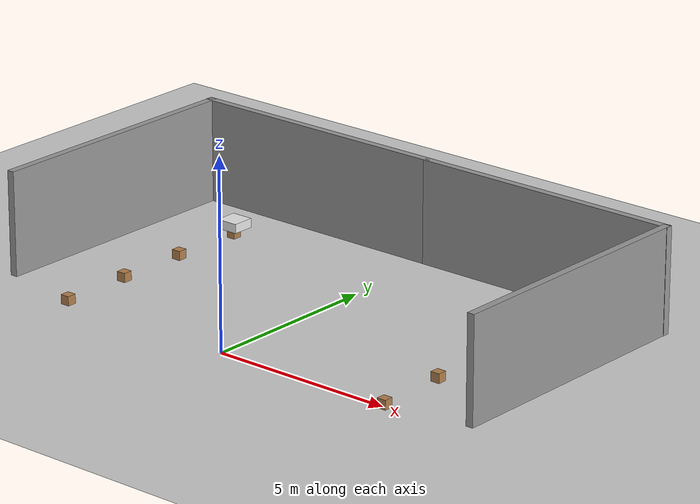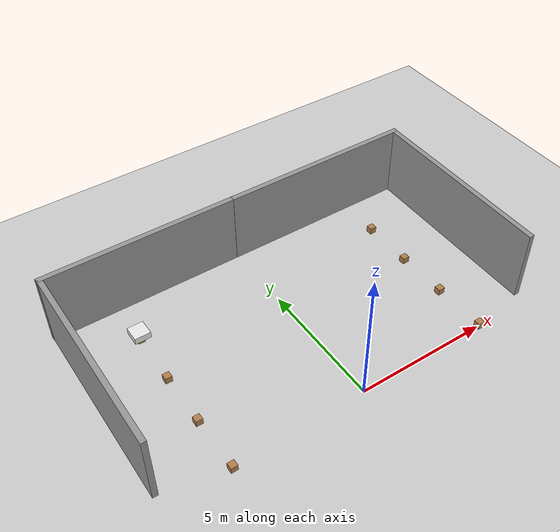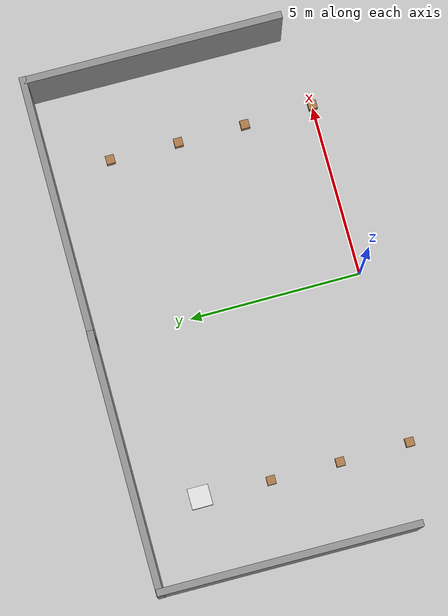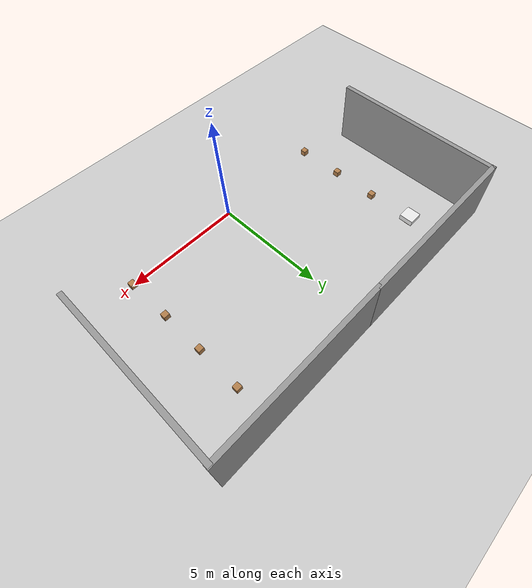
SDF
<sdf version="1.7">
 <world name="default">
  <model name="ground_plane">
   <static>1</static>
   <link name="link">
    <collision name="collision">
     <geometry><plane><normal>0 0 1</normal><size>100 100</size></plane></geometry>
     <surface>
      <contact><collide_bitmask>65535</collide_bitmask></contact>
      <friction><ode><mu>100</mu><mu2>50</mu2></ode></friction>
     </surface>
    </collision>
    <visual name="visual">
     <cast_shadows>0</cast_shadows>
     <geometry><plane><normal>0 0 1</normal><size>100 100</size></plane></geometry>
     <material>
      <script><uri>file://media/materials/scripts/gazebo.material</uri><name>Gazebo/Grey</name></script>
     </material>
    </visual>
   </link>
  </model>
  <model name="grey_wall_clone_clone">
   <static>1</static>
   <link name="link">
    <pose>0 0 1.4 0 -0 0</pose>
    <collision name="collision"><geometry><box><size>7.5 0.2 2.8</size></box></geometry></collision>
    <visual name="visual">
     <cast_shadows>0</cast_shadows>
     <geometry><box><size>7.5 0.2 2.8</size></box></geometry>
     <material>
      <script>
       <uri>model://grey_wall/materials/scripts</uri>
       <uri>model://grey_wall/materials/textures</uri>
       <name>vrc/grey_wall</name>
      </script>
     </material>
    </visual>
   </link>
   <pose>-7.34226 4.14259 0 0 -0 1.56255</pose>
  </model>
  <model name="grey_wall_clone_0">
   <static>1</static>
   <link name="link">
    <pose>0 0 1.4 0 -0 0</pose>
    <collision name="collision"><geometry><box><size>7.5 0.2 2.8</size></box></geometry></collision>
    <visual name="visual">
     <cast_shadows>0</cast_shadows>
     <geometry><box><size>7.5 0.2 2.8</size></box></geometry>
     <material>
      <script>
       <uri>model://grey_wall/materials/scripts</uri>
       <uri>model://grey_wall/materials/textures</uri>
       <name>vrc/grey_wall</name>
      </script>
     </material>
    </visual>
   </link>
   <pose>-3.67169 7.8055 0 0 -0 0</pose>
  </model>
  <model name="grey_wall_clone_2">
   <static>1</static>
   <link name="link">
    <pose>0 0 1.4 0 -0 0</pose>
    <collision name="collision"><geometry><box><size>7.5 0.2 2.8</size></box></geometry></collision>
    <visual name="visual">
     <cast_shadows>0</cast_shadows>
     <geometry><box><size>7.5 0.2 2.8</size></box></geometry>
     <material>
      <script>
       <uri>model://grey_wall/materials/scripts</uri>
       <uri>model://grey_wall/materials/textures</uri>
       <name>vrc/grey_wall</name>
      </script>
     </material>
    </visual>
   </link>
   <pose>3.67865 7.80091 0 0 -0 0</pose>
  </model>
  <model name="grey_wall_clone_clone_clone">
   <static>1</static>
   <link name="link">
    <pose>0 0 1.4 0 -0 0</pose>
    <collision name="collision"><geometry><box><size>7.5 0.2 2.8</size></box></geometry></collision>
    <visual name="visual">
     <cast_shadows>0</cast_shadows>
     <geometry><box><size>7.5 0.2 2.8</size></box></geometry>
     <material>
      <script>
       <uri>model://grey_wall/materials/scripts</uri>
       <uri>model://grey_wall/materials/textures</uri>
       <name>vrc/grey_wall</name>
      </script>
     </material>
    </visual>
   </link>
   <pose>7.28836 4.11789 0 0 -0 1.56255</pose>
  </model>
  <model name="stand">
   <link name="link_0">
    <inertial>
     <mass>1</mass>
     <inertia>
      <ixx>0.166667</ixx>
      <ixy>0</ixy>
      <ixz>0</ixz>
      <iyy>0.166667</iyy>
      <iyz>0</iyz>
      <izz>0.166667</izz>
     </inertia>
    </inertial>
    <visual name="visual">
     <geometry><box><size>0.25 0.25 0.25</size></box></geometry>
     <material>
      <lighting>1</lighting>
      <script><uri>file://media/materials/scripts/gazebo.material</uri><name>Gazebo/Wood</name></script>
      <shader type="pixel"><normal_map>__default__</normal_map></shader>
      <ambient>0.3 0.3 0.3 1</ambient>
      <diffuse>0.7 0.7 0.7 1</diffuse>
      <specular>0.01 0.01 0.01 1</specular>
      <emissive>0 0 0 1</emissive>
     </material>
    </visual>
    <collision name="collision">
     <geometry><box><size>0.25 0.25 0.25</size></box></geometry>
     <surface>
      <friction>
       <ode><mu>1</mu><mu2>1</mu2><fdir1>0 0 0</fdir1><slip1>0</slip1><slip2>0</slip2></ode>
       <torsional>
        <coefficient>1</coefficient>
        <patch_radius>0</patch_radius>
        <surface_radius>0</surface_radius>
        <use_patch_radius>1</use_patch_radius>
        <ode><slip>0</slip></ode>
       </torsional>
      </friction>
      <bounce><restitution_coefficient>0</restitution_coefficient><threshold>1e+06</threshold></bounce>
      <contact>
       <collide_without_contact>0</collide_without_contact>
       <collide_without_contact_bitmask>1</collide_without_contact_bitmask>
       <collide_bitmask>1</collide_bitmask>
       <ode>
        <soft_cfm>0</soft_cfm>
        <soft_erp>0.2</soft_erp>
        <kp>1e+13</kp>
        <kd>1</kd>
        <max_vel>0.01</max_vel>
        <min_depth>0</min_depth>
       </ode>
       <bullet>
        <split_impulse>1</split_impulse>
        <split_impulse_penetration_threshold>-0.01</split_impulse_penetration_threshold>
        <soft_cfm>0</soft_cfm>
        <soft_erp>0.2</soft_erp>
        <kp>1e+13</kp>
        <kd>1</kd>
       </bullet>
      </contact>
     </surface>
    </collision>
   </link>
   <static>0</static>
   <pose>-5.01719 -0.072488 0.125 0 -0 0</pose>
  </model>
  <model name="stand_clone_2">
   <link name="link_0">
    <inertial>
     <mass>1</mass>
     <inertia>
      <ixx>0.166667</ixx>
      <ixy>0</ixy>
      <ixz>0</ixz>
      <iyy>0.166667</iyy>
      <iyz>0</iyz>
      <izz>0.166667</izz>
     </inertia>
    </inertial>
    <visual name="visual">
     <geometry><box><size>0.25 0.25 0.25</size></box></geometry>
     <material>
      <lighting>1</lighting>
      <script><uri>file://media/materials/scripts/gazebo.material</uri><name>Gazebo/Wood</name></script>
      <shader type="pixel"><normal_map>__default__</normal_map></shader>
      <ambient>0.3 0.3 0.3 1</ambient>
      <diffuse>0.7 0.7 0.7 1</diffuse>
      <specular>0.01 0.01 0.01 1</specular>
      <emissive>0 0 0 1</emissive>
     </material>
    </visual>
    <collision name="collision">
     <geometry><box><size>0.25 0.25 0.25</size></box></geometry>
     <surface>
      <friction>
       <ode><mu>1</mu><mu2>1</mu2><fdir1>0 0 0</fdir1><slip1>0</slip1><slip2>0</slip2></ode>
       <torsional>
        <coefficient>1</coefficient>
        <patch_radius>0</patch_radius>
        <surface_radius>0</surface_radius>
        <use_patch_radius>1</use_patch_radius>
        <ode><slip>0</slip></ode>
       </torsional>
      </friction>
      <bounce><restitution_coefficient>0</restitution_coefficient><threshold>1e+06</threshold></bounce>
      <contact>
       <collide_without_contact>0</collide_without_contact>
       <collide_without_contact_bitmask>1</collide_without_contact_bitmask>
       <collide_bitmask>1</collide_bitmask>
       <ode>
        <soft_cfm>0</soft_cfm>
        <soft_erp>0.2</soft_erp>
        <kp>1e+13</kp>
        <kd>1</kd>
        <max_vel>0.01</max_vel>
        <min_depth>0</min_depth>
       </ode>
       <bullet>
        <split_impulse>1</split_impulse>
        <split_impulse_penetration_threshold>-0.01</split_impulse_penetration_threshold>
        <soft_cfm>0</soft_cfm>
        <soft_erp>0.2</soft_erp>
        <kp>1e+13</kp>
        <kd>1</kd>
       </bullet>
      </contact>
     </surface>
    </collision>
   </link>
   <static>0</static>
   <pose>-5.04215 1.97133 0.125 0 -0 0</pose>
  </model>
  <model name="stand_clone_3">
   <link name="link_0">
    <inertial>
     <mass>1</mass>
     <inertia>
      <ixx>0.166667</ixx>
      <ixy>0</ixy>
      <ixz>0</ixz>
      <iyy>0.166667</iyy>
      <iyz>0</iyz>
      <izz>0.166667</izz>
     </inertia>
    </inertial>
    <visual name="visual">
     <geometry><box><size>0.25 0.25 0.25</size></box></geometry>
     <material>
      <lighting>1</lighting>
      <script><uri>file://media/materials/scripts/gazebo.material</uri><name>Gazebo/Wood</name></script>
      <shader type="pixel"><normal_map>__default__</normal_map></shader>
      <ambient>0.3 0.3 0.3 1</ambient>
      <diffuse>0.7 0.7 0.7 1</diffuse>
      <specular>0.01 0.01 0.01 1</specular>
      <emissive>0 0 0 1</emissive>
     </material>
    </visual>
    <collision name="collision">
     <geometry><box><size>0.25 0.25 0.25</size></box></geometry>
     <surface>
      <friction>
       <ode><mu>1</mu><mu2>1</mu2><fdir1>0 0 0</fdir1><slip1>0</slip1><slip2>0</slip2></ode>
       <torsional>
        <coefficient>1</coefficient>
        <patch_radius>0</patch_radius>
        <surface_radius>0</surface_radius>
        <use_patch_radius>1</use_patch_radius>
        <ode><slip>0</slip></ode>
       </torsional>
      </friction>
      <bounce><restitution_coefficient>0</restitution_coefficient><threshold>1e+06</threshold></bounce>
      <contact>
       <collide_without_contact>0</collide_without_contact>
       <collide_without_contact_bitmask>1</collide_without_contact_bitmask>
       <collide_bitmask>1</collide_bitmask>
       <ode>
        <soft_cfm>0</soft_cfm>
        <soft_erp>0.2</soft_erp>
        <kp>1e+13</kp>
        <kd>1</kd>
        <max_vel>0.01</max_vel>
        <min_depth>0</min_depth>
       </ode>
       <bullet>
        <split_impulse>1</split_impulse>
        <split_impulse_penetration_threshold>-0.01</split_impulse_penetration_threshold>
        <soft_cfm>0</soft_cfm>
        <soft_erp>0.2</soft_erp>
        <kp>1e+13</kp>
        <kd>1</kd>
       </bullet>
      </contact>
     </surface>
    </collision>
   </link>
   <static>0</static>
   <pose>-5.03047 3.99214 0.125 0 -0 0</pose>
  </model>
  <model name="stand_clone_4">
   <link name="link_0">
    <inertial>
     <mass>1</mass>
     <inertia>
      <ixx>0.166667</ixx>
      <ixy>0</ixy>
      <ixz>0</ixz>
      <iyy>0.166667</iyy>
      <iyz>0</iyz>
      <izz>0.166667</izz>
     </inertia>
    </inertial>
    <visual name="visual">
     <geometry><box><size>0.25 0.25 0.25</size></box></geometry>
     <material>
      <lighting>1</lighting>
      <script><uri>file://media/materials/scripts/gazebo.material</uri><name>Gazebo/Wood</name></script>
      <shader type="pixel"><normal_map>__default__</normal_map></shader>
      <ambient>0.3 0.3 0.3 1</ambient>
      <diffuse>0.7 0.7 0.7 1</diffuse>
      <specular>0.01 0.01 0.01 1</specular>
      <emissive>0 0 0 1</emissive>
     </material>
    </visual>
    <collision name="collision">
     <geometry><box><size>0.25 0.25 0.25</size></box></geometry>
     <surface>
      <friction>
       <ode><mu>1</mu><mu2>1</mu2><fdir1>0 0 0</fdir1><slip1>0</slip1><slip2>0</slip2></ode>
       <torsional>
        <coefficient>1</coefficient>
        <patch_radius>0</patch_radius>
        <surface_radius>0</surface_radius>
        <use_patch_radius>1</use_patch_radius>
        <ode><slip>0</slip></ode>
       </torsional>
      </friction>
      <bounce><restitution_coefficient>0</restitution_coefficient><threshold>1e+06</threshold></bounce>
      <contact>
       <collide_without_contact>0</collide_without_contact>
       <collide_without_contact_bitmask>1</collide_without_contact_bitmask>
       <collide_bitmask>1</collide_bitmask>
       <ode>
        <soft_cfm>0</soft_cfm>
        <soft_erp>0.2</soft_erp>
        <kp>1e+13</kp>
        <kd>1</kd>
        <max_vel>0.01</max_vel>
        <min_depth>0</min_depth>
       </ode>
       <bullet>
        <split_impulse>1</split_impulse>
        <split_impulse_penetration_threshold>-0.01</split_impulse_penetration_threshold>
        <soft_cfm>0</soft_cfm>
        <soft_erp>0.2</soft_erp>
        <kp>1e+13</kp>
        <kd>1</kd>
       </bullet>
      </contact>
     </surface>
    </collision>
   </link>
   <static>0</static>
   <pose>-4.98638 6.03055 0.12498 -4e-06 -1e-06 -0.001712</pose>
  </model>
  <model name="stand_clone_5">
   <link name="link_0">
    <inertial>
     <mass>1</mass>
     <inertia>
      <ixx>0.166667</ixx>
      <ixy>0</ixy>
      <ixz>0</ixz>
      <iyy>0.166667</iyy>
      <iyz>0</iyz>
      <izz>0.166667</izz>
     </inertia>
    </inertial>
    <visual name="visual">
     <geometry><box><size>0.25 0.25 0.25</size></box></geometry>
     <material>
      <lighting>1</lighting>
      <script><uri>file://media/materials/scripts/gazebo.material</uri><name>Gazebo/Wood</name></script>
      <shader type="pixel"><normal_map>__default__</normal_map></shader>
      <ambient>0.3 0.3 0.3 1</ambient>
      <diffuse>0.7 0.7 0.7 1</diffuse>
      <specular>0.01 0.01 0.01 1</specular>
      <emissive>0 0 0 1</emissive>
     </material>
    </visual>
    <collision name="collision">
     <geometry><box><size>0.25 0.25 0.25</size></box></geometry>
     <surface>
      <friction>
       <ode><mu>1</mu><mu2>1</mu2><fdir1>0 0 0</fdir1><slip1>0</slip1><slip2>0</slip2></ode>
       <torsional>
        <coefficient>1</coefficient>
        <patch_radius>0</patch_radius>
        <surface_radius>0</surface_radius>
        <use_patch_radius>1</use_patch_radius>
        <ode><slip>0</slip></ode>
       </torsional>
      </friction>
      <bounce><restitution_coefficient>0</restitution_coefficient><threshold>1e+06</threshold></bounce>
      <contact>
       <collide_without_contact>0</collide_without_contact>
       <collide_without_contact_bitmask>1</collide_without_contact_bitmask>
       <collide_bitmask>1</collide_bitmask>
       <ode>
        <soft_cfm>0</soft_cfm>
        <soft_erp>0.2</soft_erp>
        <kp>1e+13</kp>
        <kd>1</kd>
        <max_vel>0.01</max_vel>
        <min_depth>0</min_depth>
       </ode>
       <bullet>
        <split_impulse>1</split_impulse>
        <split_impulse_penetration_threshold>-0.01</split_impulse_penetration_threshold>
        <soft_cfm>0</soft_cfm>
        <soft_erp>0.2</soft_erp>
        <kp>1e+13</kp>
        <kd>1</kd>
       </bullet>
      </contact>
     </surface>
    </collision>
   </link>
   <static>0</static>
   <pose>5.05805 -0.000635 0.125 0 -0 0</pose>
  </model>
  <model name="stand_clone_6">
   <link name="link_0">
    <inertial>
     <mass>1</mass>
     <inertia>
      <ixx>0.166667</ixx>
      <ixy>0</ixy>
      <ixz>0</ixz>
      <iyy>0.166667</iyy>
      <iyz>0</iyz>
      <izz>0.166667</izz>
     </inertia>
    </inertial>
    <visual name="visual">
     <geometry><box><size>0.25 0.25 0.25</size></box></geometry>
     <material>
      <lighting>1</lighting>
      <script><uri>file://media/materials/scripts/gazebo.material</uri><name>Gazebo/Wood</name></script>
      <shader type="pixel"><normal_map>__default__</normal_map></shader>
      <ambient>0.3 0.3 0.3 1</ambient>
      <diffuse>0.7 0.7 0.7 1</diffuse>
      <specular>0.01 0.01 0.01 1</specular>
      <emissive>0 0 0 1</emissive>
     </material>
    </visual>
    <collision name="collision">
     <geometry><box><size>0.25 0.25 0.25</size></box></geometry>
     <surface>
      <friction>
       <ode><mu>1</mu><mu2>1</mu2><fdir1>0 0 0</fdir1><slip1>0</slip1><slip2>0</slip2></ode>
       <torsional>
        <coefficient>1</coefficient>
        <patch_radius>0</patch_radius>
        <surface_radius>0</surface_radius>
        <use_patch_radius>1</use_patch_radius>
        <ode><slip>0</slip></ode>
       </torsional>
      </friction>
      <bounce><restitution_coefficient>0</restitution_coefficient><threshold>1e+06</threshold></bounce>
      <contact>
       <collide_without_contact>0</collide_without_contact>
       <collide_without_contact_bitmask>1</collide_without_contact_bitmask>
       <collide_bitmask>1</collide_bitmask>
       <ode>
        <soft_cfm>0</soft_cfm>
        <soft_erp>0.2</soft_erp>
        <kp>1e+13</kp>
        <kd>1</kd>
        <max_vel>0.01</max_vel>
        <min_depth>0</min_depth>
       </ode>
       <bullet>
        <split_impulse>1</split_impulse>
        <split_impulse_penetration_threshold>-0.01</split_impulse_penetration_threshold>
        <soft_cfm>0</soft_cfm>
        <soft_erp>0.2</soft_erp>
        <kp>1e+13</kp>
        <kd>1</kd>
       </bullet>
      </contact>
     </surface>
    </collision>
   </link>
   <static>0</static>
   <pose>5.01599 2.02341 0.125 0 -0 0</pose>
  </model>
  <model name="stand_clone_7">
   <link name="link_0">
    <inertial>
     <mass>1</mass>
     <inertia>
      <ixx>0.166667</ixx>
      <ixy>0</ixy>
      <ixz>0</ixz>
      <iyy>0.166667</iyy>
      <iyz>0</iyz>
      <izz>0.166667</izz>
     </inertia>
    </inertial>
    <visual name="visual">
     <geometry><box><size>0.25 0.25 0.25</size></box></geometry>
     <material>
      <lighting>1</lighting>
      <script><uri>file://media/materials/scripts/gazebo.material</uri><name>Gazebo/Wood</name></script>
      <shader type="pixel"><normal_map>__default__</normal_map></shader>
      <ambient>0.3 0.3 0.3 1</ambient>
      <diffuse>0.7 0.7 0.7 1</diffuse>
      <specular>0.01 0.01 0.01 1</specular>
      <emissive>0 0 0 1</emissive>
     </material>
    </visual>
    <collision name="collision">
     <geometry><box><size>0.25 0.25 0.25</size></box></geometry>
     <surface>
      <friction>
       <ode><mu>1</mu><mu2>1</mu2><fdir1>0 0 0</fdir1><slip1>0</slip1><slip2>0</slip2></ode>
       <torsional>
        <coefficient>1</coefficient>
        <patch_radius>0</patch_radius>
        <surface_radius>0</surface_radius>
        <use_patch_radius>1</use_patch_radius>
        <ode><slip>0</slip></ode>
       </torsional>
      </friction>
      <bounce><restitution_coefficient>0</restitution_coefficient><threshold>1e+06</threshold></bounce>
      <contact>
       <collide_without_contact>0</collide_without_contact>
       <collide_without_contact_bitmask>1</collide_without_contact_bitmask>
       <collide_bitmask>1</collide_bitmask>
       <ode>
        <soft_cfm>0</soft_cfm>
        <soft_erp>0.2</soft_erp>
        <kp>1e+13</kp>
        <kd>1</kd>
        <max_vel>0.01</max_vel>
        <min_depth>0</min_depth>
       </ode>
       <bullet>
        <split_impulse>1</split_impulse>
        <split_impulse_penetration_threshold>-0.01</split_impulse_penetration_threshold>
        <soft_cfm>0</soft_cfm>
        <soft_erp>0.2</soft_erp>
        <kp>1e+13</kp>
        <kd>1</kd>
       </bullet>
      </contact>
     </surface>
    </collision>
   </link>
   <static>0</static>
   <pose>5.00998 3.99876 0.125 0 -0 0</pose>
  </model>
  <model name="stand_clone_8">
   <link name="link_0">
    <inertial>
     <mass>1</mass>
     <inertia>
      <ixx>0.166667</ixx>
      <ixy>0</ixy>
      <ixz>0</ixz>
      <iyy>0.166667</iyy>
      <iyz>0</iyz>
      <izz>0.166667</izz>
     </inertia>
    </inertial>
    <visual name="visual">
     <geometry><box><size>0.25 0.25 0.25</size></box></geometry>
     <material>
      <lighting>1</lighting>
      <script><uri>file://media/materials/scripts/gazebo.material</uri><name>Gazebo/Wood</name></script>
      <shader type="pixel"><normal_map>__default__</normal_map></shader>
      <ambient>0.3 0.3 0.3 1</ambient>
      <diffuse>0.7 0.7 0.7 1</diffuse>
      <specular>0.01 0.01 0.01 1</specular>
      <emissive>0 0 0 1</emissive>
     </material>
    </visual>
    <collision name="collision">
     <geometry><box><size>0.25 0.25 0.25</size></box></geometry>
     <surface>
      <friction>
       <ode><mu>1</mu><mu2>1</mu2><fdir1>0 0 0</fdir1><slip1>0</slip1><slip2>0</slip2></ode>
       <torsional>
        <coefficient>1</coefficient>
        <patch_radius>0</patch_radius>
        <surface_radius>0</surface_radius>
        <use_patch_radius>1</use_patch_radius>
        <ode><slip>0</slip></ode>
       </torsional>
      </friction>
      <bounce><restitution_coefficient>0</restitution_coefficient><threshold>1e+06</threshold></bounce>
      <contact>
       <collide_without_contact>0</collide_without_contact>
       <collide_without_contact_bitmask>1</collide_without_contact_bitmask>
       <collide_bitmask>1</collide_bitmask>
       <ode>
        <soft_cfm>0</soft_cfm>
        <soft_erp>0.2</soft_erp>
        <kp>1e+13</kp>
        <kd>1</kd>
        <max_vel>0.01</max_vel>
        <min_depth>0</min_depth>
       </ode>
       <bullet>
        <split_impulse>1</split_impulse>
        <split_impulse_penetration_threshold>-0.01</split_impulse_penetration_threshold>
        <soft_cfm>0</soft_cfm>
        <soft_erp>0.2</soft_erp>
        <kp>1e+13</kp>
        <kd>1</kd>
       </bullet>
      </contact>
     </surface>
    </collision>
   </link>
   <static>0</static>
   <pose>5.03272 6.01103 0.125 0 -0 0</pose>
  </model>
  <model name="payload">
   <link name="link">
    <inertial>
     <mass>1</mass>
     <inertia>
      <ixx>0.166667</ixx>
      <ixy>0</ixy>
      <ixz>0</ixz>
      <iyy>0.166667</iyy>
      <iyz>0</iyz>
      <izz>0.166667</izz>
     </inertia>
    </inertial>
    <visual name="visual">
     <geometry><box><size>0.6 0.6 0.25</size></box></geometry>
     <material>
      <script><name>Gazebo/White</name><uri>file://media/materials/scripts/gazebo.material</uri></script>
      <shader type="pixel"><normal_map>__default__</normal_map></shader>
      <ambient>0.3 0.3 0.3 1</ambient>
      <diffuse>0.7 0.7 0.7 1</diffuse>
      <specular>0.01 0.01 0.01 1</specular>
      <emissive>0 0 0 1</emissive>
     </material>
    </visual>
    <collision name="collision">
     <geometry><box><size>0.6 0.6 0.25</size></box></geometry>
     <surface>
      <friction>
       <ode><mu>1</mu><mu2>1</mu2><fdir1>0 0 0</fdir1><slip1>0</slip1><slip2>0</slip2></ode>
       <torsional>
        <coefficient>1</coefficient>
        <patch_radius>0</patch_radius>
        <surface_radius>0</surface_radius>
        <use_patch_radius>1</use_patch_radius>
        <ode><slip>0</slip></ode>
       </torsional>
      </friction>
      <bounce><restitution_coefficient>0</restitution_coefficient><threshold>1e+06</threshold></bounce>
      <contact>
       <collide_without_contact>0</collide_without_contact>
       <collide_without_contact_bitmask>1</collide_without_contact_bitmask>
       <collide_bitmask>1</collide_bitmask>
       <ode>
        <soft_cfm>0</soft_cfm>
        <soft_erp>0.2</soft_erp>
        <kp>1e+13</kp>
        <kd>1</kd>
        <max_vel>0.01</max_vel>
        <min_depth>0</min_depth>
       </ode>
       <bullet>
        <split_impulse>1</split_impulse>
        <split_impulse_penetration_threshold>-0.01</split_impulse_penetration_threshold>
        <soft_cfm>0</soft_cfm>
        <soft_erp>0.2</soft_erp>
        <kp>1e+13</kp>
        <kd>1</kd>
       </bullet>
      </contact>
     </surface>
    </collision>
   </link>
   <static>0</static>
   <pose>-4.97529 6.0536 0.374956 -7e-06 1.8e-05 -0.000281</pose>
  </model>
 </world>
</sdf>
